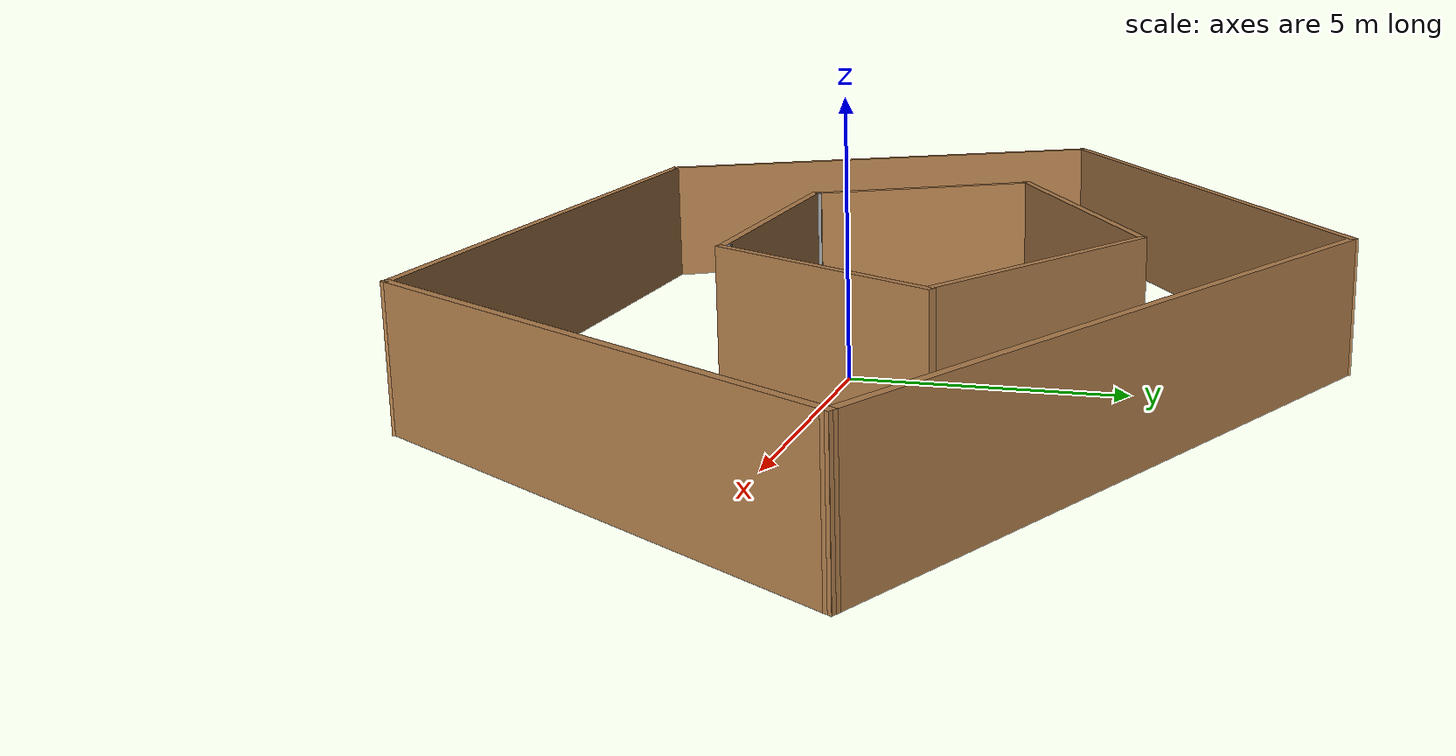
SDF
<?xml version='1.0'?>
<sdf version='1.7'>
  <model name='pentagon_hallway_filled'>
    <pose>-1.56498 1.24561 0 0 -0 0</pose>
    <link name='Wall_154'>
      <collision name='Wall_154_Collision'>
        <geometry>
          <box>
            <size>4.72994 0.15 2.5</size>
          </box>
        </geometry>
        <pose>0 0 1.25 0 -0 0</pose>
      </collision>
      <visual name='Wall_154_Visual'>
        <pose>0 0 1.25 0 -0 0</pose>
        <geometry>
          <box>
            <size>4.72994 0.15 2.5</size>
          </box>
        </geometry>
        <material>
          <script>
            <uri>file://media/materials/scripts/gazebo.material</uri>
            <name>Gazebo/Wood</name>
          </script>
          <ambient>1 1 1 1</ambient>
        </material>
        <meta>
          <layer>0</layer>
        </meta>
      </visual>
      <pose>-4.40492 -1.20596 0 0 -0 -1.05668</pose>
    </link>
    <link name='Wall_155'>
      <collision name='Wall_155_Collision'>
        <geometry>
          <box>
            <size>0.16 0.15 2.5</size>
          </box>
        </geometry>
        <pose>0 0 1.25 0 -0 0</pose>
      </collision>
      <visual name='Wall_155_Visual'>
        <pose>0 0 1.25 0 -0 0</pose>
        <geometry>
          <box>
            <size>0.16 0.15 2.5</size>
          </box>
        </geometry>
        <material>
          <script>
            <uri>file://media/materials/scripts/gazebo.material</uri>
            <name>Gazebo/Grey</name>
          </script>
          <ambient>1 1 1 1</ambient>
        </material>
        <meta>
          <layer>0</layer>
        </meta>
      </visual>
      <pose>-3.27379 -3.19989 0 0 -0 0</pose>
    </link>
    <link name='Wall_156'>
      <collision name='Wall_156_Collision'>
        <geometry>
          <box>
            <size>5.75 0.15 2.5</size>
          </box>
        </geometry>
        <pose>0 0 1.25 0 -0 0</pose>
      </collision>
      <visual name='Wall_156_Visual'>
        <pose>0 0 1.25 0 -0 0</pose>
        <geometry>
          <box>
            <size>5.75 0.15 2.5</size>
          </box>
        </geometry>
        <material>
          <script>
            <uri>file://media/materials/scripts/gazebo.material</uri>
            <name>Gazebo/Wood</name>
          </script>
          <ambient>1 1 1 1</ambient>
        </material>
        <meta>
          <layer>0</layer>
        </meta>
      </visual>
      <pose>-0.468791 -3.2737 0 0 -0 0</pose>
    </link>
    <link name='Wall_157'>
      <collision name='Wall_157_Collision'>
        <geometry>
          <box>
            <size>0.224476 0.15 2.5</size>
          </box>
        </geometry>
        <pose>0 0 1.25 0 -0 0</pose>
      </collision>
      <visual name='Wall_157_Visual'>
        <pose>0 0 1.25 0 -0 0</pose>
        <geometry>
          <box>
            <size>0.224476 0.15 2.5</size>
          </box>
        </geometry>
        <material>
          <script>
            <uri>file://media/materials/scripts/gazebo.material</uri>
            <name>Gazebo/Grey</name>
          </script>
          <ambient>1 1 1 1</ambient>
        </material>
        <meta>
          <layer>0</layer>
        </meta>
      </visual>
      <pose>2.33621 -3.23679 0 0 -0 -1.43612</pose>
    </link>
    <link name='Wall_158'>
      <collision name='Wall_158_Collision'>
        <geometry>
          <box>
            <size>5 0.15 2.5</size>
          </box>
        </geometry>
        <pose>0 0 1.25 0 -0 0</pose>
      </collision>
      <visual name='Wall_158_Visual'>
        <pose>0 0 1.25 0 -0 0</pose>
        <geometry>
          <box>
            <size>5 0.15 2.5</size>
          </box>
        </geometry>
        <material>
          <script>
            <uri>file://media/materials/scripts/gazebo.material</uri>
            <name>Gazebo/Wood</name>
          </script>
          <ambient>1 1 1 1</ambient>
        </material>
        <meta>
          <layer>0</layer>
        </meta>
      </visual>
      <pose>3.62751 -1.17358 0 0 -0 1.0472</pose>
    </link>
    <link name='Wall_159'>
      <collision name='Wall_159_Collision'>
        <geometry>
          <box>
            <size>5.56215 0.15 2.5</size>
          </box>
        </geometry>
        <pose>0 0 1.25 0 -0 0</pose>
      </collision>
      <visual name='Wall_159_Visual'>
        <pose>0 0 1.25 0 -0 0</pose>
        <geometry>
          <box>
            <size>5.56215 0.15 2.5</size>
          </box>
        </geometry>
        <material>
          <script>
            <uri>file://media/materials/scripts/gazebo.material</uri>
            <name>Gazebo/Wood</name>
          </script>
          <ambient>1 1 1 1</ambient>
        </material>
        <meta>
          <layer>0</layer>
        </meta>
      </visual>
      <pose>2.4547 2.33357 0 0 -0 2.59479</pose>
    </link>
    <link name='Wall_161'>
      <collision name='Wall_161_Collision'>
        <geometry>
          <box>
            <size>6.54648 0.15 2.5</size>
          </box>
        </geometry>
        <pose>0 0 1.25 0 -0 0</pose>
      </collision>
      <visual name='Wall_161_Visual'>
        <pose>0 0 1.25 0 -0 0</pose>
        <geometry>
          <box>
            <size>6.54648 0.15 2.5</size>
          </box>
        </geometry>
        <material>
          <script>
            <uri>file://media/materials/scripts/gazebo.material</uri>
            <name>Gazebo/Wood</name>
          </script>
          <ambient>1 1 1 1</ambient>
        </material>
        <meta>
          <layer>0</layer>
        </meta>
      </visual>
      <pose>-2.76773 2.2643 0 0 -0 -2.66179</pose>
    </link>
    <link name='Wall_166'>
      <collision name='Wall_166_Collision'>
        <geometry>
          <box>
            <size>12.25 0.15 2.5</size>
          </box>
        </geometry>
        <pose>0 0 1.25 0 -0 0</pose>
      </collision>
      <visual name='Wall_166_Visual'>
        <pose>0 0 1.25 0 -0 0</pose>
        <geometry>
          <box>
            <size>12.25 0.15 2.5</size>
          </box>
        </geometry>
        <material>
          <script>
            <uri>file://media/materials/scripts/gazebo.material</uri>
            <name>Gazebo/Wood</name>
          </script>
          <ambient>1 1 1 1</ambient>
        </material>
        <meta>
          <layer>0</layer>
        </meta>
      </visual>
      <pose>-5.80305 4.37343 0 0 -0 -2.61799</pose>
    </link>
    <link name='Wall_167'>
      <collision name='Wall_167_Collision'>
        <geometry>
          <box>
            <size>0.16 0.15 2.5</size>
          </box>
        </geometry>
        <pose>0 0 1.25 0 -0 0</pose>
      </collision>
      <visual name='Wall_167_Visual'>
        <pose>0 0 1.25 0 -0 0</pose>
        <geometry>
          <box>
            <size>0.16 0.15 2.5</size>
          </box>
        </geometry>
        <material>
          <script>
            <uri>file://media/materials/scripts/gazebo.material</uri>
            <name>Gazebo/Grey</name>
          </script>
          <ambient>1 1 1 1</ambient>
        </material>
        <meta>
          <layer>0</layer>
        </meta>
      </visual>
      <pose>-11.0375 1.34843 0 0 -0 0</pose>
    </link>
    <link name='Wall_168'>
      <collision name='Wall_168_Collision'>
        <geometry>
          <box>
            <size>10.25 0.15 2.5</size>
          </box>
        </geometry>
        <pose>0 0 1.25 0 -0 0</pose>
      </collision>
      <visual name='Wall_168_Visual'>
        <pose>0 0 1.25 0 -0 0</pose>
        <geometry>
          <box>
            <size>10.25 0.15 2.5</size>
          </box>
        </geometry>
        <material>
          <script>
            <uri>file://media/materials/scripts/gazebo.material</uri>
            <name>Gazebo/Wood</name>
          </script>
          <ambient>1 1 1 1</ambient>
        </material>
        <meta>
          <layer>0</layer>
        </meta>
      </visual>
      <pose>-8.5075 -3.025 0 0 -0 -1.0472</pose>
    </link>
    <link name='Wall_169'>
      <collision name='Wall_169_Collision'>
        <geometry>
          <box>
            <size>12.25 0.15 2.5</size>
          </box>
        </geometry>
        <pose>0 0 1.25 0 -0 0</pose>
      </collision>
      <visual name='Wall_169_Visual'>
        <pose>0 0 1.25 0 -0 0</pose>
        <geometry>
          <box>
            <size>12.25 0.15 2.5</size>
          </box>
        </geometry>
        <material>
          <script>
            <uri>file://media/materials/scripts/gazebo.material</uri>
            <name>Gazebo/Wood</name>
          </script>
          <ambient>1 1 1 1</ambient>
        </material>
        <meta>
          <layer>0</layer>
        </meta>
      </visual>
      <pose>0.067501 -7.39843 0 0 -0 0</pose>
    </link>
    <link name='Wall_170'>
      <collision name='Wall_170_Collision'>
        <geometry>
          <box>
            <size>10 0.15 2.5</size>
          </box>
        </geometry>
        <pose>0 0 1.25 0 -0 0</pose>
      </collision>
      <visual name='Wall_170_Visual'>
        <pose>0 0 1.25 0 -0 0</pose>
        <geometry>
          <box>
            <size>10 0.15 2.5</size>
          </box>
        </geometry>
        <material>
          <script>
            <uri>file://media/materials/scripts/gazebo.material</uri>
            <name>Gazebo/Wood</name>
          </script>
          <ambient>1 1 1 1</ambient>
        </material>
        <meta>
          <layer>0</layer>
        </meta>
      </visual>
      <pose>8.58 -3.13325 0 0 -0 1.0472</pose>
    </link>
    <link name='Wall_171'>
      <collision name='Wall_171_Collision'>
        <geometry>
          <box>
            <size>13.3398 0.15 2.5</size>
          </box>
        </geometry>
        <pose>0 0 1.25 0 -0 0</pose>
      </collision>
      <visual name='Wall_171_Visual'>
        <pose>0 0 1.25 0 -0 0</pose>
        <geometry>
          <box>
            <size>13.3398 0.15 2.5</size>
          </box>
        </geometry>
        <material>
          <script>
            <uri>file://media/materials/scripts/gazebo.material</uri>
            <name>Gazebo/Wood</name>
          </script>
          <ambient>1 1 1 1</ambient>
        </material>
        <meta>
          <layer>0</layer>
        </meta>
      </visual>
      <pose>5.23946 4.26517 0 0 -0 2.64651</pose>
    </link>
    <static>1</static>
  </model>
</sdf>
